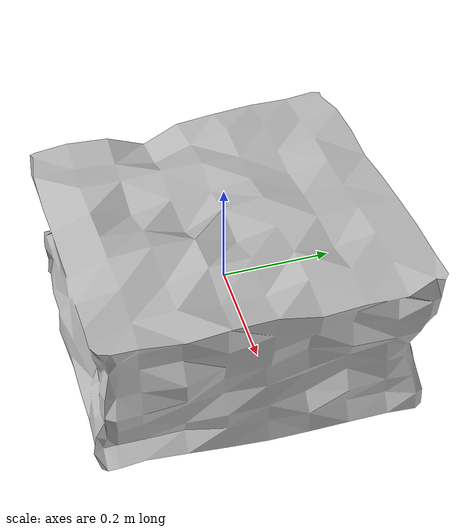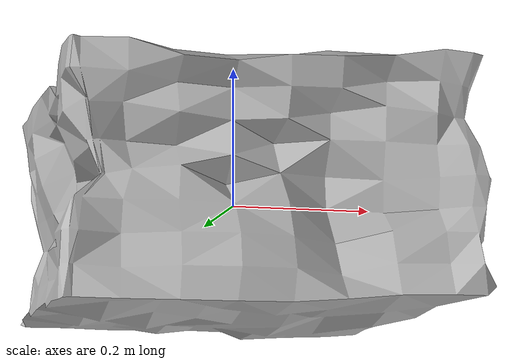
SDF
<?xml version="1.0" ?>
<sdf version="1.6">
  <model name="CTB_1023">
    <static>true</static>
    <link name="link">
      <pose>0 0 0 3.14 0 0</pose>
      <visual name="visual">
        <geometry>
          <mesh>
            <uri>model://CTB_1023/CTB_1023.dae</uri>
            <scale>0.3 0.3 0.3</scale>
          </mesh>
        </geometry>
      </visual>
      <collision name="collision">
        <geometry>
          <mesh>
            <uri>model://CTB_1023/CTB_1023.dae</uri>
            <scale>0.3 0.3 0.3</scale>
          </mesh>
        </geometry>
      </collision>
    </link>
  </model>
</sdf>
